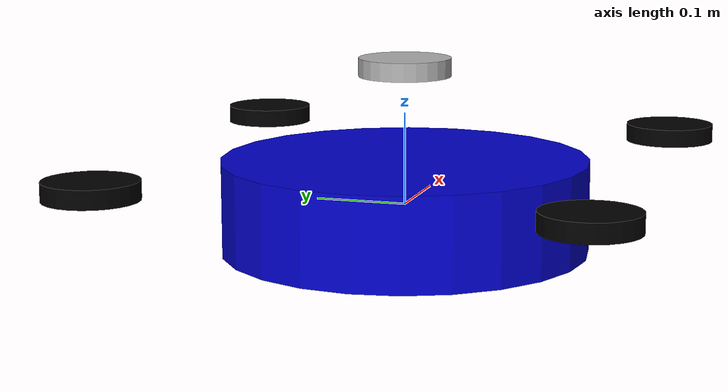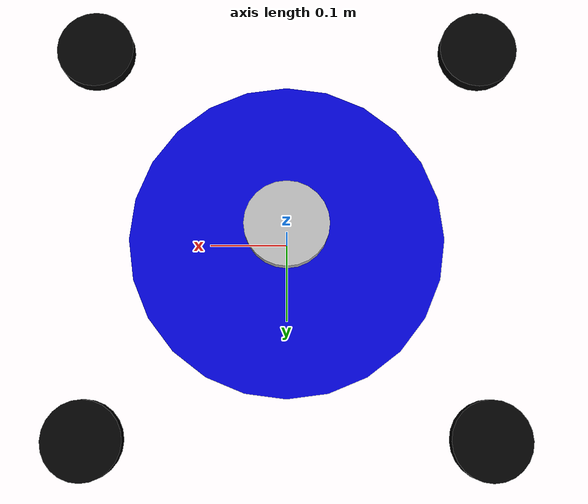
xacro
<?xml version="1.0"?>
<robot name="sim_drone" xmlns:xacro="http://ros.org/wiki/xacro">

  <!-- Materials -->
  <material name="blue">
    <color rgba="0.0 0.0 0.8 1.0"/>
  </material>
  <material name="black">
    <color rgba="0.0 0.0 0.0 1.0"/>
  </material>
  <material name="gray">
    <color rgba="0.7 0.7 0.7 1.0"/>
  </material>

  <!-- Base Body -->
  <link name="base_link">
    <visual>
      <origin xyz="0 0 0"/>
      <geometry>
        <cylinder length="0.1" radius="0.2"/>
      </geometry>
      <material name="blue"/>
    </visual>
    <collision>
      <origin xyz="0 0 0" rpy="0 0 0"/>
      <geometry>
        <cylinder length="0.1" radius="0.2"/>
      </geometry>
    </collision>
    <inertial>
      <mass value="1.0"/>
      <origin xyz="0 0 0" rpy="0 0 0"/>
      <inertia ixx="0.05" ixy="0.0" ixz="0.0" iyy="0.05" iyz="0.0" izz="0.05"/>
    </inertial>
  </link>

  <!-- Propeller Links -->
  <link name="prop1">
    <visual>
      <origin xyz="0 0 0"/>
      <geometry>
        <cylinder length="0.02" radius="0.05"/>
      </geometry>
      <material name="black"/>
    </visual>
    <collision>
      <origin xyz="0 0 0"/>
      <geometry>
        <cylinder length="0.02" radius="0.05"/>
      </geometry>
    </collision>
    <inertial>
      <origin xyz="0 0 0"/>
      <mass value="0.1"/>
      <inertia ixx="0.0001" ixy="0" ixz="0" iyy="0.0001" iyz="0" izz="0.0001"/>
    </inertial>
  </link>

  <link name="prop2">
    <visual>
      <origin xyz="0 0 0"/>
      <geometry>
        <cylinder length="0.02" radius="0.05"/>
      </geometry>
      <material name="black"/>
    </visual>
    <collision>
      <origin xyz="0 0 0"/>
      <geometry>
        <cylinder length="0.02" radius="0.05"/>
      </geometry>
    </collision>
    <inertial>
      <origin xyz="0 0 0"/>
      <mass value="0.1"/>
      <inertia ixx="0.0001" ixy="0" ixz="0" iyy="0.0001" iyz="0" izz="0.0001"/>
    </inertial>
  </link>

  <link name="prop3">
    <visual>
      <origin xyz="0 0 0"/>
      <geometry>
        <cylinder length="0.02" radius="0.05"/>
      </geometry>
      <material name="black"/>
    </visual>
    <collision>
      <origin xyz="0 0 0"/>
      <geometry>
        <cylinder length="0.02" radius="0.05"/>
      </geometry>
    </collision>
    <inertial>
      <origin xyz="0 0 0"/>
      <mass value="0.1"/>
      <inertia ixx="0.0001" ixy="0" ixz="0" iyy="0.0001" iyz="0" izz="0.0001"/>
    </inertial>
  </link>

  <link name="prop4">
    <visual>
      <origin xyz="0 0 0"/>
      <geometry>
        <cylinder length="0.02" radius="0.05"/>
      </geometry>
      <material name="black"/>
    </visual>
    <collision>
      <origin xyz="0 0 0"/>
      <geometry>
        <cylinder length="0.02" radius="0.05"/>
      </geometry>
    </collision>
    <inertial>
      <origin xyz="0 0 0"/>
      <mass value="0.1"/>
      <inertia ixx="0.0001" ixy="0" ixz="0" iyy="0.0001" iyz="0" izz="0.0001"/>
    </inertial>
  </link>

  <!-- Joints -->
  <joint name="prop1_joint" type="fixed">
    <parent link="base_link"/>
    <child link="prop1"/>
    <origin xyz="0.25 0.25 0.05" rpy="0 0 0"/>
  </joint>

  <joint name="prop2_joint" type="fixed">
    <parent link="base_link"/>
    <child link="prop2"/>
    <origin xyz="0.25 -0.25 0.05" rpy="0 0 0"/>
  </joint>

  <joint name="prop3_joint" type="fixed">
    <parent link="base_link"/>
    <child link="prop3"/>
    <origin xyz="-0.25 0.25 0.05" rpy="0 0 0"/>
  </joint>

  <joint name="prop4_joint" type="fixed">
    <parent link="base_link"/>
    <child link="prop4"/>
    <origin xyz="-0.25 -0.25 0.05" rpy="0 0 0"/>
  </joint>

  <!-- Lidar Sensor Link -->
  <link name="lidar_link">
    <visual>
      <origin xyz="0 0 0"/>
      <geometry>
        <cylinder radius="0.05" length="0.02"/>
      </geometry>
      <material name="gray"/>
    </visual>
    <collision>
      <origin xyz="0 0 0"/>
      <geometry>
        <cylinder radius="0.05" length="0.02"/>
      </geometry>
    </collision>
    <inertial>
      <mass value="0.05"/>
      <origin xyz="0 0 0" rpy="0 0 0"/>
      <inertia ixx="0.001" ixy="0.0" ixz="0.0" iyy="0.001" iyz="0.0" izz="0.001"/>
    </inertial>
  </link>

  <joint name="lidar_joint" type="fixed">
    <parent link="base_link"/>
    <child link="lidar_link"/>
    <origin xyz="0 0 0.15" rpy="0 0 0"/>
  </joint>

  <!-- Gazebo Specific Elements -->

  <!-- LiDAR Plugin - topic tag removed for compatibility -->
  <gazebo reference="lidar_link">
    <sensor name="lidar" type="ray">
      <pose>0 0 0 0 0 0</pose>
      <update_rate>10.0</update_rate>
      <ray>
        <scan>
          <horizontal>
            <samples>360</samples>
            <resolution>1</resolution>
            <min_angle>-3.14</min_angle>
            <max_angle>3.14</max_angle>
          </horizontal>
        </scan>
        <range>
          <min>0.2</min>
          <max>10.0</max>
        </range>
      </ray>
      <always_on>1</always_on>
      <visualize>true</visualize>
    </sensor>
  </gazebo>

  <!-- Add IMU Sensor for better flight control -->
  <gazebo reference="base_link">
    <sensor name="imu_sensor" type="imu">
      <pose>0 0 0 0 0 0</pose>
      <topic>/drone/imu</topic>
      <update_rate>100.0</update_rate>
      <always_on>1</always_on>
    </sensor>
  </gazebo>

  <!-- Gazebo Plugins -->
  <gazebo>
    <!-- Velocity Control Plugin - Updated for Ignition Gazebo compatibility -->
    <plugin filename="libignition-gazebo-velocity-control-system.so"
      name="ignition::gazebo::systems::VelocityControl">
      <link_name>base_link</link_name>
      <topic>/cmd_vel</topic>
    </plugin>

  </gazebo>

</robot>
